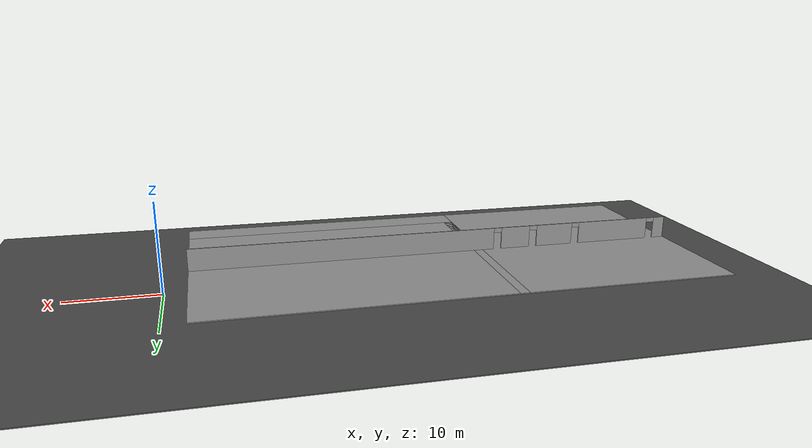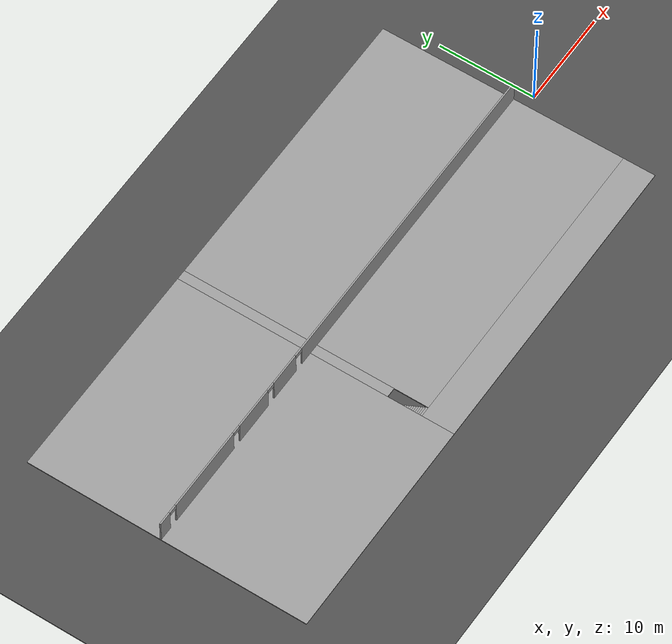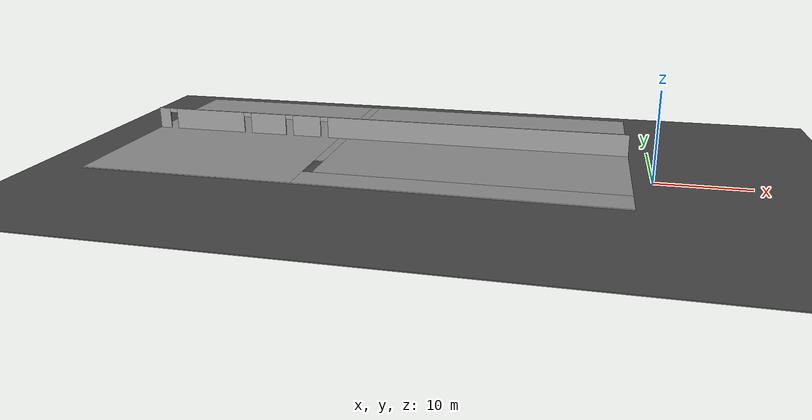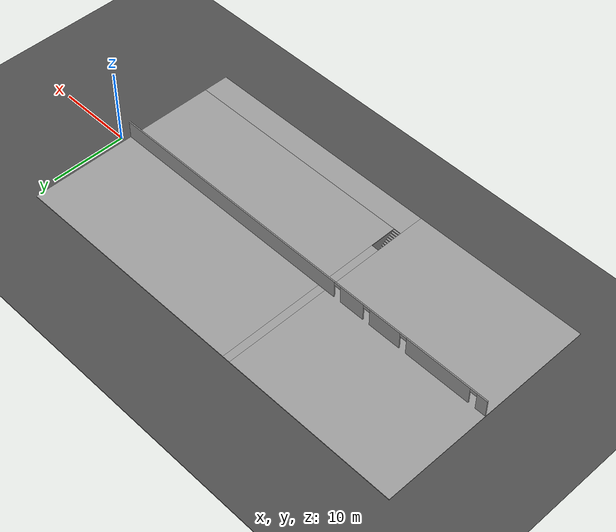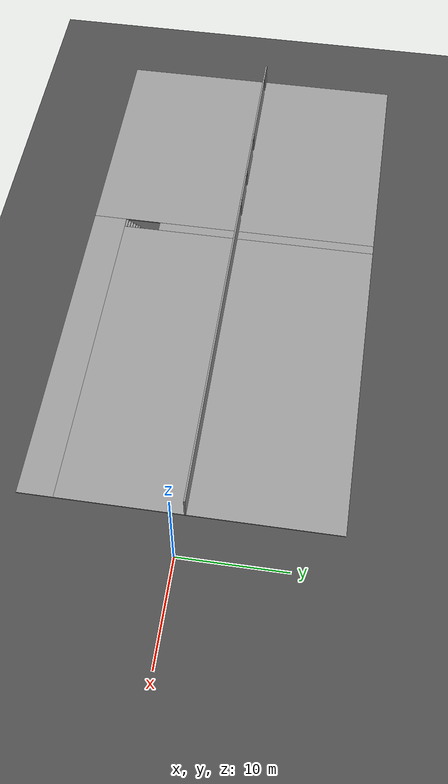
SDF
<sdf version="1.6">
 <world name="default">
  <model name="ground_plane">
   <static>1</static>
   <link name="link">
    <collision name="collision">
     <geometry><plane><normal>0 0 1</normal><size>100 100</size></plane></geometry>
     <surface>
      <contact><collide_bitmask>65535</collide_bitmask></contact>
      <friction><ode><mu>100</mu><mu2>50</mu2></ode></friction>
     </surface>
    </collision>
    <visual name="visual">
     <cast_shadows>0</cast_shadows>
     <geometry><plane><normal>0 0 1</normal><size>100 100</size></plane></geometry>
     <material>
      <script><uri>file://media/materials/scripts/gazebo.material</uri><name>Gazebo/Grey</name></script>
     </material>
    </visual>
   </link>
  </model>
  <model name="asphalt_plane">
   <static>1</static>
   <link name="link">
    <collision name="collision"><geometry><box><size>200 200 0.1</size></box></geometry></collision>
    <visual name="visual">
     <cast_shadows>0</cast_shadows>
     <geometry><box><size>200 200 0.1</size></box></geometry>
     <material>
      <script>
       <uri>model://asphalt_plane/materials/scripts</uri>
       <uri>model://asphalt_plane/materials/textures</uri>
       <name>vrc/asphalt</name>
      </script>
     </material>
    </visual>
   </link>
  </model>
  <model name="Biggest">
   <link name="Floor_3">
    <pose>0 0 2.5 0 -0 0</pose>
    <visual name="Floor_3_Visual_1">
     <pose>11.2183 -12.6292 0.05 0 -0 0</pose>
     <geometry><box><size>32.1063 3.27346 0.1</size></box></geometry>
     <material>
      <script><uri>file://media/materials/scripts/gazebo.material</uri><name>Gazebo/Grey</name></script>
      <ambient>1 1 1 1</ambient>
     </material>
     <meta><layer>1</layer></meta>
    </visual>
    <visual name="Floor_3_Visual_3">
     <pose>-4.33484 3.38673 0.05 0 -0 0</pose>
     <geometry><box><size>1 21.7585 0.1</size></box></geometry>
     <material>
      <script><uri>file://media/materials/scripts/gazebo.material</uri><name>Gazebo/Grey</name></script>
      <ambient>1 1 1 1</ambient>
     </material>
     <meta><layer>1</layer></meta>
    </visual>
    <visual name="Floor_3_Visual_0">
     <pose>-16.0531 0 0.05 0 -0 0</pose>
     <geometry><box><size>22.4366 28.5319 0.1</size></box></geometry>
     <material>
      <script><uri>file://media/materials/scripts/gazebo.material</uri><name>Gazebo/Grey</name></script>
      <ambient>1 1 1 1</ambient>
     </material>
     <meta><layer>1</layer></meta>
    </visual>
    <visual name="Floor_3_Visual_2">
     <pose>11.7183 1.63673 0.05 0 -0 0</pose>
     <geometry><box><size>31.1063 25.2585 0.1</size></box></geometry>
     <material>
      <script><uri>file://media/materials/scripts/gazebo.material</uri><name>Gazebo/Grey</name></script>
      <ambient>1 1 1 1</ambient>
     </material>
     <meta><layer>1</layer></meta>
    </visual>
    <collision name="Floor_3_Collision_2">
     <pose>11.7183 1.63673 0.05 0 -0 0</pose>
     <geometry><box><size>31.1063 25.2585 0.1</size></box></geometry>
     <surface>
      <friction>
       <ode><mu>1</mu><mu2>1</mu2><fdir1>0 0 0</fdir1><slip1>0</slip1><slip2>0</slip2></ode>
       <torsional>
        <coefficient>1</coefficient>
        <patch_radius>0</patch_radius>
        <surface_radius>0</surface_radius>
        <use_patch_radius>1</use_patch_radius>
        <ode><slip>0</slip></ode>
       </torsional>
      </friction>
      <bounce><restitution_coefficient>0</restitution_coefficient><threshold>1e+06</threshold></bounce>
      <contact>
       <collide_without_contact>0</collide_without_contact>
       <collide_without_contact_bitmask>1</collide_without_contact_bitmask>
       <collide_bitmask>1</collide_bitmask>
       <ode>
        <soft_cfm>0</soft_cfm>
        <soft_erp>0.2</soft_erp>
        <kp>1e+13</kp>
        <kd>1</kd>
        <max_vel>0.01</max_vel>
        <min_depth>0</min_depth>
       </ode>
       <bullet>
        <split_impulse>1</split_impulse>
        <split_impulse_penetration_threshold>-0.01</split_impulse_penetration_threshold>
        <soft_cfm>0</soft_cfm>
        <soft_erp>0.2</soft_erp>
        <kp>1e+13</kp>
        <kd>1</kd>
       </bullet>
      </contact>
     </surface>
    </collision>
    <collision name="Floor_3_Collision_1">
     <pose>11.2183 -12.6292 0.05 0 -0 0</pose>
     <geometry><box><size>32.1063 3.27346 0.1</size></box></geometry>
     <surface>
      <friction>
       <ode><mu>1</mu><mu2>1</mu2><fdir1>0 0 0</fdir1><slip1>0</slip1><slip2>0</slip2></ode>
       <torsional>
        <coefficient>1</coefficient>
        <patch_radius>0</patch_radius>
        <surface_radius>0</surface_radius>
        <use_patch_radius>1</use_patch_radius>
        <ode><slip>0</slip></ode>
       </torsional>
      </friction>
      <bounce><restitution_coefficient>0</restitution_coefficient><threshold>1e+06</threshold></bounce>
      <contact>
       <collide_without_contact>0</collide_without_contact>
       <collide_without_contact_bitmask>1</collide_without_contact_bitmask>
       <collide_bitmask>1</collide_bitmask>
       <ode>
        <soft_cfm>0</soft_cfm>
        <soft_erp>0.2</soft_erp>
        <kp>1e+13</kp>
        <kd>1</kd>
        <max_vel>0.01</max_vel>
        <min_depth>0</min_depth>
       </ode>
       <bullet>
        <split_impulse>1</split_impulse>
        <split_impulse_penetration_threshold>-0.01</split_impulse_penetration_threshold>
        <soft_cfm>0</soft_cfm>
        <soft_erp>0.2</soft_erp>
        <kp>1e+13</kp>
        <kd>1</kd>
       </bullet>
      </contact>
     </surface>
    </collision>
    <collision name="Floor_3_Collision_3">
     <pose>-4.33484 3.38673 0.05 0 -0 0</pose>
     <geometry><box><size>1 21.7585 0.1</size></box></geometry>
     <surface>
      <friction>
       <ode><mu>1</mu><mu2>1</mu2><fdir1>0 0 0</fdir1><slip1>0</slip1><slip2>0</slip2></ode>
       <torsional>
        <coefficient>1</coefficient>
        <patch_radius>0</patch_radius>
        <surface_radius>0</surface_radius>
        <use_patch_radius>1</use_patch_radius>
        <ode><slip>0</slip></ode>
       </torsional>
      </friction>
      <bounce><restitution_coefficient>0</restitution_coefficient><threshold>1e+06</threshold></bounce>
      <contact>
       <collide_without_contact>0</collide_without_contact>
       <collide_without_contact_bitmask>1</collide_without_contact_bitmask>
       <collide_bitmask>1</collide_bitmask>
       <ode>
        <soft_cfm>0</soft_cfm>
        <soft_erp>0.2</soft_erp>
        <kp>1e+13</kp>
        <kd>1</kd>
        <max_vel>0.01</max_vel>
        <min_depth>0</min_depth>
       </ode>
       <bullet>
        <split_impulse>1</split_impulse>
        <split_impulse_penetration_threshold>-0.01</split_impulse_penetration_threshold>
        <soft_cfm>0</soft_cfm>
        <soft_erp>0.2</soft_erp>
        <kp>1e+13</kp>
        <kd>1</kd>
       </bullet>
      </contact>
     </surface>
    </collision>
    <collision name="Floor_3_Collision_0">
     <pose>-16.0531 0 0.05 0 -0 0</pose>
     <geometry><box><size>22.4366 28.5319 0.1</size></box></geometry>
     <surface>
      <friction>
       <ode><mu>1</mu><mu2>1</mu2><fdir1>0 0 0</fdir1><slip1>0</slip1><slip2>0</slip2></ode>
       <torsional>
        <coefficient>1</coefficient>
        <patch_radius>0</patch_radius>
        <surface_radius>0</surface_radius>
        <use_patch_radius>1</use_patch_radius>
        <ode><slip>0</slip></ode>
       </torsional>
      </friction>
      <bounce><restitution_coefficient>0</restitution_coefficient><threshold>1e+06</threshold></bounce>
      <contact>
       <collide_without_contact>0</collide_without_contact>
       <collide_without_contact_bitmask>1</collide_without_contact_bitmask>
       <collide_bitmask>1</collide_bitmask>
       <ode>
        <soft_cfm>0</soft_cfm>
        <soft_erp>0.2</soft_erp>
        <kp>1e+13</kp>
        <kd>1</kd>
        <max_vel>0.01</max_vel>
        <min_depth>0</min_depth>
       </ode>
       <bullet>
        <split_impulse>1</split_impulse>
        <split_impulse_penetration_threshold>-0.01</split_impulse_penetration_threshold>
        <soft_cfm>0</soft_cfm>
        <soft_erp>0.2</soft_erp>
        <kp>1e+13</kp>
        <kd>1</kd>
       </bullet>
      </contact>
     </surface>
    </collision>
   </link>
   <link name="Stairs_1">
    <visual name="Stairs_1_Visual_6">
     <pose>-4.33484 -9.00918 1.08333 0 -0 0</pose>
     <geometry><box><size>1 0.233333 0.166667</size></box></geometry>
     <material>
      <script><uri>file://media/materials/scripts/gazebo.material</uri><name>Gazebo/Grey</name></script>
      <ambient>1 1 1 1</ambient>
     </material>
     <meta><layer>0</layer></meta>
    </visual>
    <visual name="Stairs_1_Visual_2">
     <pose>-4.33484 -8.07584 0.416667 0 -0 0</pose>
     <geometry><box><size>1 0.233333 0.166667</size></box></geometry>
     <material>
      <script><uri>file://media/materials/scripts/gazebo.material</uri><name>Gazebo/Grey</name></script>
      <ambient>1 1 1 1</ambient>
     </material>
     <meta><layer>0</layer></meta>
    </visual>
    <visual name="Stairs_1_Visual_4">
     <pose>-4.33484 -8.54251 0.75 0 -0 0</pose>
     <geometry><box><size>1 0.233333 0.166667</size></box></geometry>
     <material>
      <script><uri>file://media/materials/scripts/gazebo.material</uri><name>Gazebo/Grey</name></script>
      <ambient>1 1 1 1</ambient>
     </material>
     <meta><layer>0</layer></meta>
    </visual>
    <visual name="Stairs_1_Visual_1">
     <pose>-4.33484 -7.84251 0.25 0 -0 0</pose>
     <geometry><box><size>1 0.233333 0.166667</size></box></geometry>
     <material>
      <script><uri>file://media/materials/scripts/gazebo.material</uri><name>Gazebo/Grey</name></script>
      <ambient>1 1 1 1</ambient>
     </material>
     <meta><layer>0</layer></meta>
    </visual>
    <visual name="Stairs_1_Visual_13">
     <pose>-4.33484 -10.6425 2.25 0 -0 0</pose>
     <geometry><box><size>1 0.233333 0.166667</size></box></geometry>
     <material>
      <script><uri>file://media/materials/scripts/gazebo.material</uri><name>Gazebo/Grey</name></script>
      <ambient>1 1 1 1</ambient>
     </material>
     <meta><layer>0</layer></meta>
    </visual>
    <visual name="Stairs_1_Visual_0">
     <pose>-4.33484 -7.60918 0.083333 0 -0 0</pose>
     <geometry><box><size>1 0.233333 0.166667</size></box></geometry>
     <material>
      <script><uri>file://media/materials/scripts/gazebo.material</uri><name>Gazebo/Grey</name></script>
      <ambient>1 1 1 1</ambient>
     </material>
     <meta><layer>0</layer></meta>
    </visual>
    <visual name="Stairs_1_Visual_9">
     <pose>-4.33484 -9.70918 1.58333 0 -0 0</pose>
     <geometry><box><size>1 0.233333 0.166667</size></box></geometry>
     <material>
      <script><uri>file://media/materials/scripts/gazebo.material</uri><name>Gazebo/Grey</name></script>
      <ambient>1 1 1 1</ambient>
     </material>
     <meta><layer>0</layer></meta>
    </visual>
    <visual name="Stairs_1_Visual_14">
     <pose>-4.33484 -10.8758 2.41667 0 -0 0</pose>
     <geometry><box><size>1 0.233333 0.166667</size></box></geometry>
     <material>
      <script><uri>file://media/materials/scripts/gazebo.material</uri><name>Gazebo/Grey</name></script>
      <ambient>1 1 1 1</ambient>
     </material>
     <meta><layer>0</layer></meta>
    </visual>
    <visual name="Stairs_1_Visual_3">
     <pose>-4.33484 -8.30917 0.583333 0 -0 0</pose>
     <geometry><box><size>1 0.233333 0.166667</size></box></geometry>
     <material>
      <script><uri>file://media/materials/scripts/gazebo.material</uri><name>Gazebo/Grey</name></script>
      <ambient>1 1 1 1</ambient>
     </material>
     <meta><layer>0</layer></meta>
    </visual>
    <visual name="Stairs_1_Visual_5">
     <pose>-4.33484 -8.77584 0.916667 0 -0 0</pose>
     <geometry><box><size>1 0.233333 0.166667</size></box></geometry>
     <material>
      <script><uri>file://media/materials/scripts/gazebo.material</uri><name>Gazebo/Grey</name></script>
      <ambient>1 1 1 1</ambient>
     </material>
     <meta><layer>0</layer></meta>
    </visual>
    <visual name="Stairs_1_Visual_10">
     <pose>-4.33484 -9.94251 1.75 0 -0 0</pose>
     <geometry><box><size>1 0.233333 0.166667</size></box></geometry>
     <material>
      <script><uri>file://media/materials/scripts/gazebo.material</uri><name>Gazebo/Grey</name></script>
      <ambient>1 1 1 1</ambient>
     </material>
     <meta><layer>0</layer></meta>
    </visual>
    <visual name="Stairs_1_Visual_8">
     <pose>-4.33484 -9.47584 1.41667 0 -0 0</pose>
     <geometry><box><size>1 0.233333 0.166667</size></box></geometry>
     <material>
      <script><uri>file://media/materials/scripts/gazebo.material</uri><name>Gazebo/Grey</name></script>
      <ambient>1 1 1 1</ambient>
     </material>
     <meta><layer>0</layer></meta>
    </visual>
    <visual name="Stairs_1_Visual_11">
     <pose>-4.33484 -10.1758 1.91667 0 -0 0</pose>
     <geometry><box><size>1 0.233333 0.166667</size></box></geometry>
     <material>
      <script><uri>file://media/materials/scripts/gazebo.material</uri><name>Gazebo/Grey</name></script>
      <ambient>1 1 1 1</ambient>
     </material>
     <meta><layer>0</layer></meta>
    </visual>
    <visual name="Stairs_1_Visual_7">
     <pose>-4.33484 -9.24251 1.25 0 -0 0</pose>
     <geometry><box><size>1 0.233333 0.166667</size></box></geometry>
     <material>
      <script><uri>file://media/materials/scripts/gazebo.material</uri><name>Gazebo/Grey</name></script>
      <ambient>1 1 1 1</ambient>
     </material>
     <meta><layer>0</layer></meta>
    </visual>
    <visual name="Stairs_1_Visual_12">
     <pose>-4.33484 -10.4092 2.08333 0 -0 0</pose>
     <geometry><box><size>1 0.233333 0.166667</size></box></geometry>
     <material>
      <script><uri>file://media/materials/scripts/gazebo.material</uri><name>Gazebo/Grey</name></script>
      <ambient>1 1 1 1</ambient>
     </material>
     <meta><layer>0</layer></meta>
    </visual>
    <collision name="Stairs_1_Collision_6">
     <pose>-4.33484 -9.00918 1.08333 0 -0 0</pose>
     <geometry><box><size>1 0.233333 0.166667</size></box></geometry>
     <surface>
      <friction>
       <ode><mu>1</mu><mu2>1</mu2><fdir1>0 0 0</fdir1><slip1>0</slip1><slip2>0</slip2></ode>
       <torsional>
        <coefficient>1</coefficient>
        <patch_radius>0</patch_radius>
        <surface_radius>0</surface_radius>
        <use_patch_radius>1</use_patch_radius>
        <ode><slip>0</slip></ode>
       </torsional>
      </friction>
      <bounce><restitution_coefficient>0</restitution_coefficient><threshold>1e+06</threshold></bounce>
      <contact>
       <collide_without_contact>0</collide_without_contact>
       <collide_without_contact_bitmask>1</collide_without_contact_bitmask>
       <collide_bitmask>1</collide_bitmask>
       <ode>
        <soft_cfm>0</soft_cfm>
        <soft_erp>0.2</soft_erp>
        <kp>1e+13</kp>
        <kd>1</kd>
        <max_vel>0.01</max_vel>
        <min_depth>0</min_depth>
       </ode>
       <bullet>
        <split_impulse>1</split_impulse>
        <split_impulse_penetration_threshold>-0.01</split_impulse_penetration_threshold>
        <soft_cfm>0</soft_cfm>
        <soft_erp>0.2</soft_erp>
        <kp>1e+13</kp>
        <kd>1</kd>
       </bullet>
      </contact>
     </surface>
    </collision>
    <collision name="Stairs_1_Collision_5">
     <pose>-4.33484 -8.77584 0.916667 0 -0 0</pose>
     <geometry><box><size>1 0.233333 0.166667</size></box></geometry>
     <surface>
      <friction>
       <ode><mu>1</mu><mu2>1</mu2><fdir1>0 0 0</fdir1><slip1>0</slip1><slip2>0</slip2></ode>
       <torsional>
        <coefficient>1</coefficient>
        <patch_radius>0</patch_radius>
        <surface_radius>0</surface_radius>
        <use_patch_radius>1</use_patch_radius>
        <ode><slip>0</slip></ode>
       </torsional>
      </friction>
      <bounce><restitution_coefficient>0</restitution_coefficient><threshold>1e+06</threshold></bounce>
      <contact>
       <collide_without_contact>0</collide_without_contact>
       <collide_without_contact_bitmask>1</collide_without_contact_bitmask>
       <collide_bitmask>1</collide_bitmask>
       <ode>
        <soft_cfm>0</soft_cfm>
        <soft_erp>0.2</soft_erp>
        <kp>1e+13</kp>
        <kd>1</kd>
        <max_vel>0.01</max_vel>
        <min_depth>0</min_depth>
       </ode>
       <bullet>
        <split_impulse>1</split_impulse>
        <split_impulse_penetration_threshold>-0.01</split_impulse_penetration_threshold>
        <soft_cfm>0</soft_cfm>
        <soft_erp>0.2</soft_erp>
        <kp>1e+13</kp>
        <kd>1</kd>
       </bullet>
      </contact>
     </surface>
    </collision>
    <collision name="Stairs_1_Collision_1">
     <pose>-4.33484 -7.84251 0.25 0 -0 0</pose>
     <geometry><box><size>1 0.233333 0.166667</size></box></geometry>
     <surface>
      <friction>
       <ode><mu>1</mu><mu2>1</mu2><fdir1>0 0 0</fdir1><slip1>0</slip1><slip2>0</slip2></ode>
       <torsional>
        <coefficient>1</coefficient>
        <patch_radius>0</patch_radius>
        <surface_radius>0</surface_radius>
        <use_patch_radius>1</use_patch_radius>
        <ode><slip>0</slip></ode>
       </torsional>
      </friction>
      <bounce><restitution_coefficient>0</restitution_coefficient><threshold>1e+06</threshold></bounce>
      <contact>
       <collide_without_contact>0</collide_without_contact>
       <collide_without_contact_bitmask>1</collide_without_contact_bitmask>
       <collide_bitmask>1</collide_bitmask>
       <ode>
        <soft_cfm>0</soft_cfm>
        <soft_erp>0.2</soft_erp>
        <kp>1e+13</kp>
        <kd>1</kd>
        <max_vel>0.01</max_vel>
        <min_depth>0</min_depth>
       </ode>
       <bullet>
        <split_impulse>1</split_impulse>
        <split_impulse_penetration_threshold>-0.01</split_impulse_penetration_threshold>
        <soft_cfm>0</soft_cfm>
        <soft_erp>0.2</soft_erp>
        <kp>1e+13</kp>
        <kd>1</kd>
       </bullet>
      </contact>
     </surface>
    </collision>
    <collision name="Stairs_1_Collision_9">
     <pose>-4.33484 -9.70918 1.58333 0 -0 0</pose>
     <geometry><box><size>1 0.233333 0.166667</size></box></geometry>
     <surface>
      <friction>
       <ode><mu>1</mu><mu2>1</mu2><fdir1>0 0 0</fdir1><slip1>0</slip1><slip2>0</slip2></ode>
       <torsional>
        <coefficient>1</coefficient>
        <patch_radius>0</patch_radius>
        <surface_radius>0</surface_radius>
        <use_patch_radius>1</use_patch_radius>
        <ode><slip>0</slip></ode>
       </torsional>
      </friction>
      <bounce><restitution_coefficient>0</restitution_coefficient><threshold>1e+06</threshold></bounce>
      <contact>
       <collide_without_contact>0</collide_without_contact>
       <collide_without_contact_bitmask>1</collide_without_contact_bitmask>
       <collide_bitmask>1</collide_bitmask>
       <ode>
        <soft_cfm>0</soft_cfm>
        <soft_erp>0.2</soft_erp>
        <kp>1e+13</kp>
        <kd>1</kd>
        <max_vel>0.01</max_vel>
        <min_depth>0</min_depth>
       </ode>
       <bullet>
        <split_impulse>1</split_impulse>
        <split_impulse_penetration_threshold>-0.01</split_impulse_penetration_threshold>
        <soft_cfm>0</soft_cfm>
        <soft_erp>0.2</soft_erp>
        <kp>1e+13</kp>
        <kd>1</kd>
       </bullet>
      </contact>
     </surface>
    </collision>
    <collision name="Stairs_1_Collision_12">
     <pose>-4.33484 -10.4092 2.08333 0 -0 0</pose>
     <geometry><box><size>1 0.233333 0.166667</size></box></geometry>
     <surface>
      <friction>
       <ode><mu>1</mu><mu2>1</mu2><fdir1>0 0 0</fdir1><slip1>0</slip1><slip2>0</slip2></ode>
       <torsional>
        <coefficient>1</coefficient>
        <patch_radius>0</patch_radius>
        <surface_radius>0</surface_radius>
        <use_patch_radius>1</use_patch_radius>
        <ode><slip>0</slip></ode>
       </torsional>
      </friction>
      <bounce><restitution_coefficient>0</restitution_coefficient><threshold>1e+06</threshold></bounce>
      <contact>
       <collide_without_contact>0</collide_without_contact>
       <collide_without_contact_bitmask>1</collide_without_contact_bitmask>
       <collide_bitmask>1</collide_bitmask>
       <ode>
        <soft_cfm>0</soft_cfm>
        <soft_erp>0.2</soft_erp>
        <kp>1e+13</kp>
        <kd>1</kd>
        <max_vel>0.01</max_vel>
        <min_depth>0</min_depth>
       </ode>
       <bullet>
        <split_impulse>1</split_impulse>
        <split_impulse_penetration_threshold>-0.01</split_impulse_penetration_threshold>
        <soft_cfm>0</soft_cfm>
        <soft_erp>0.2</soft_erp>
        <kp>1e+13</kp>
        <kd>1</kd>
       </bullet>
      </contact>
     </surface>
    </collision>
    <collision name="Stairs_1_Collision_2">
     <pose>-4.33484 -8.07584 0.416667 0 -0 0</pose>
     <geometry><box><size>1 0.233333 0.166667</size></box></geometry>
     <surface>
      <friction>
       <ode><mu>1</mu><mu2>1</mu2><fdir1>0 0 0</fdir1><slip1>0</slip1><slip2>0</slip2></ode>
       <torsional>
        <coefficient>1</coefficient>
        <patch_radius>0</patch_radius>
        <surface_radius>0</surface_radius>
        <use_patch_radius>1</use_patch_radius>
        <ode><slip>0</slip></ode>
       </torsional>
      </friction>
      <bounce><restitution_coefficient>0</restitution_coefficient><threshold>1e+06</threshold></bounce>
      <contact>
       <collide_without_contact>0</collide_without_contact>
       <collide_without_contact_bitmask>1</collide_without_contact_bitmask>
       <collide_bitmask>1</collide_bitmask>
       <ode>
        <soft_cfm>0</soft_cfm>
        <soft_erp>0.2</soft_erp>
        <kp>1e+13</kp>
        <kd>1</kd>
        <max_vel>0.01</max_vel>
        <min_depth>0</min_depth>
       </ode>
       <bullet>
        <split_impulse>1</split_impulse>
        <split_impulse_penetration_threshold>-0.01</split_impulse_penetration_threshold>
        <soft_cfm>0</soft_cfm>
        <soft_erp>0.2</soft_erp>
        <kp>1e+13</kp>
        <kd>1</kd>
       </bullet>
      </contact>
     </surface>
    </collision>
    <collision name="Stairs_1_Collision_10">
     <pose>-4.33484 -9.94251 1.75 0 -0 0</pose>
     <geometry><box><size>1 0.233333 0.166667</size></box></geometry>
     <surface>
      <friction>
       <ode><mu>1</mu><mu2>1</mu2><fdir1>0 0 0</fdir1><slip1>0</slip1><slip2>0</slip2></ode>
       <torsional>
        <coefficient>1</coefficient>
        <patch_radius>0</patch_radius>
        <surface_radius>0</surface_radius>
        <use_patch_radius>1</use_patch_radius>
        <ode><slip>0</slip></ode>
       </torsional>
      </friction>
      <bounce><restitution_coefficient>0</restitution_coefficient><threshold>1e+06</threshold></bounce>
      <contact>
       <collide_without_contact>0</collide_without_contact>
       <collide_without_contact_bitmask>1</collide_without_contact_bitmask>
       <collide_bitmask>1</collide_bitmask>
       <ode>
        <soft_cfm>0</soft_cfm>
        <soft_erp>0.2</soft_erp>
        <kp>1e+13</kp>
        <kd>1</kd>
        <max_vel>0.01</max_vel>
        <min_depth>0</min_depth>
       </ode>
       <bullet>
        <split_impulse>1</split_impulse>
        <split_impulse_penetration_threshold>-0.01</split_impulse_penetration_threshold>
        <soft_cfm>0</soft_cfm>
        <soft_erp>0.2</soft_erp>
        <kp>1e+13</kp>
        <kd>1</kd>
       </bullet>
      </contact>
     </surface>
    </collision>
    <collision name="Stairs_1_Collision_3">
     <pose>-4.33484 -8.30917 0.583333 0 -0 0</pose>
     <geometry><box><size>1 0.233333 0.166667</size></box></geometry>
     <surface>
      <friction>
       <ode><mu>1</mu><mu2>1</mu2><fdir1>0 0 0</fdir1><slip1>0</slip1><slip2>0</slip2></ode>
       <torsional>
        <coefficient>1</coefficient>
        <patch_radius>0</patch_radius>
        <surface_radius>0</surface_radius>
        <use_patch_radius>1</use_patch_radius>
        <ode><slip>0</slip></ode>
       </torsional>
      </friction>
      <bounce><restitution_coefficient>0</restitution_coefficient><threshold>1e+06</threshold></bounce>
      <contact>
       <collide_without_contact>0</collide_without_contact>
       <collide_without_contact_bitmask>1</collide_without_contact_bitmask>
       <collide_bitmask>1</collide_bitmask>
       <ode>
        <soft_cfm>0</soft_cfm>
        <soft_erp>0.2</soft_erp>
        <kp>1e+13</kp>
        <kd>1</kd>
        <max_vel>0.01</max_vel>
        <min_depth>0</min_depth>
       </ode>
       <bullet>
        <split_impulse>1</split_impulse>
        <split_impulse_penetration_threshold>-0.01</split_impulse_penetration_threshold>
        <soft_cfm>0</soft_cfm>
        <soft_erp>0.2</soft_erp>
        <kp>1e+13</kp>
        <kd>1</kd>
       </bullet>
      </contact>
     </surface>
    </collision>
    <collision name="Stairs_1_Collision_7">
     <pose>-4.33484 -9.24251 1.25 0 -0 0</pose>
     <geometry><box><size>1 0.233333 0.166667</size></box></geometry>
     <surface>
      <friction>
       <ode><mu>1</mu><mu2>1</mu2><fdir1>0 0 0</fdir1><slip1>0</slip1><slip2>0</slip2></ode>
       <torsional>
        <coefficient>1</coefficient>
        <patch_radius>0</patch_radius>
        <surface_radius>0</surface_radius>
        <use_patch_radius>1</use_patch_radius>
        <ode><slip>0</slip></ode>
       </torsional>
      </friction>
      <bounce><restitution_coefficient>0</restitution_coefficient><threshold>1e+06</threshold></bounce>
      <contact>
       <collide_without_contact>0</collide_without_contact>
       <collide_without_contact_bitmask>1</collide_without_contact_bitmask>
       <collide_bitmask>1</collide_bitmask>
       <ode>
        <soft_cfm>0</soft_cfm>
        <soft_erp>0.2</soft_erp>
        <kp>1e+13</kp>
        <kd>1</kd>
        <max_vel>0.01</max_vel>
        <min_depth>0</min_depth>
       </ode>
       <bullet>
        <split_impulse>1</split_impulse>
        <split_impulse_penetration_threshold>-0.01</split_impulse_penetration_threshold>
        <soft_cfm>0</soft_cfm>
        <soft_erp>0.2</soft_erp>
        <kp>1e+13</kp>
        <kd>1</kd>
       </bullet>
      </contact>
     </surface>
    </collision>
    <collision name="Stairs_1_Collision_0">
     <pose>-4.33484 -7.60918 0.083333 0 -0 0</pose>
     <geometry><box><size>1 0.233333 0.166667</size></box></geometry>
     <surface>
      <friction>
       <ode><mu>1</mu><mu2>1</mu2><fdir1>0 0 0</fdir1><slip1>0</slip1><slip2>0</slip2></ode>
       <torsional>
        <coefficient>1</coefficient>
        <patch_radius>0</patch_radius>
        <surface_radius>0</surface_radius>
        <use_patch_radius>1</use_patch_radius>
        <ode><slip>0</slip></ode>
       </torsional>
      </friction>
      <bounce><restitution_coefficient>0</restitution_coefficient><threshold>1e+06</threshold></bounce>
      <contact>
       <collide_without_contact>0</collide_without_contact>
       <collide_without_contact_bitmask>1</collide_without_contact_bitmask>
       <collide_bitmask>1</collide_bitmask>
       <ode>
        <soft_cfm>0</soft_cfm>
        <soft_erp>0.2</soft_erp>
        <kp>1e+13</kp>
        <kd>1</kd>
        <max_vel>0.01</max_vel>
        <min_depth>0</min_depth>
       </ode>
       <bullet>
        <split_impulse>1</split_impulse>
        <split_impulse_penetration_threshold>-0.01</split_impulse_penetration_threshold>
        <soft_cfm>0</soft_cfm>
        <soft_erp>0.2</soft_erp>
        <kp>1e+13</kp>
        <kd>1</kd>
       </bullet>
      </contact>
     </surface>
    </collision>
    <collision name="Stairs_1_Collision_14">
     <pose>-4.33484 -10.8758 2.41667 0 -0 0</pose>
     <geometry><box><size>1 0.233333 0.166667</size></box></geometry>
     <surface>
      <friction>
       <ode><mu>1</mu><mu2>1</mu2><fdir1>0 0 0</fdir1><slip1>0</slip1><slip2>0</slip2></ode>
       <torsional>
        <coefficient>1</coefficient>
        <patch_radius>0</patch_radius>
        <surface_radius>0</surface_radius>
        <use_patch_radius>1</use_patch_radius>
        <ode><slip>0</slip></ode>
       </torsional>
      </friction>
      <bounce><restitution_coefficient>0</restitution_coefficient><threshold>1e+06</threshold></bounce>
      <contact>
       <collide_without_contact>0</collide_without_contact>
       <collide_without_contact_bitmask>1</collide_without_contact_bitmask>
       <collide_bitmask>1</collide_bitmask>
       <ode>
        <soft_cfm>0</soft_cfm>
        <soft_erp>0.2</soft_erp>
        <kp>1e+13</kp>
        <kd>1</kd>
        <max_vel>0.01</max_vel>
        <min_depth>0</min_depth>
       </ode>
       <bullet>
        <split_impulse>1</split_impulse>
        <split_impulse_penetration_threshold>-0.01</split_impulse_penetration_threshold>
        <soft_cfm>0</soft_cfm>
        <soft_erp>0.2</soft_erp>
        <kp>1e+13</kp>
        <kd>1</kd>
       </bullet>
      </contact>
     </surface>
    </collision>
    <collision name="Stairs_1_Collision_8">
     <pose>-4.33484 -9.47584 1.41667 0 -0 0</pose>
     <geometry><box><size>1 0.233333 0.166667</size></box></geometry>
     <surface>
      <friction>
       <ode><mu>1</mu><mu2>1</mu2><fdir1>0 0 0</fdir1><slip1>0</slip1><slip2>0</slip2></ode>
       <torsional>
        <coefficient>1</coefficient>
        <patch_radius>0</patch_radius>
        <surface_radius>0</surface_radius>
        <use_patch_radius>1</use_patch_radius>
        <ode><slip>0</slip></ode>
       </torsional>
      </friction>
      <bounce><restitution_coefficient>0</restitution_coefficient><threshold>1e+06</threshold></bounce>
      <contact>
       <collide_without_contact>0</collide_without_contact>
       <collide_without_contact_bitmask>1</collide_without_contact_bitmask>
       <collide_bitmask>1</collide_bitmask>
       <ode>
        <soft_cfm>0</soft_cfm>
        <soft_erp>0.2</soft_erp>
        <kp>1e+13</kp>
        <kd>1</kd>
        <max_vel>0.01</max_vel>
        <min_depth>0</min_depth>
       </ode>
       <bullet>
        <split_impulse>1</split_impulse>
        <split_impulse_penetration_threshold>-0.01</split_impulse_penetration_threshold>
        <soft_cfm>0</soft_cfm>
        <soft_erp>0.2</soft_erp>
        <kp>1e+13</kp>
        <kd>1</kd>
       </bullet>
      </contact>
     </surface>
    </collision>
    <collision name="Stairs_1_Collision_13">
     <pose>-4.33484 -10.6425 2.25 0 -0 0</pose>
     <geometry><box><size>1 0.233333 0.166667</size></box></geometry>
     <surface>
      <friction>
       <ode><mu>1</mu><mu2>1</mu2><fdir1>0 0 0</fdir1><slip1>0</slip1><slip2>0</slip2></ode>
       <torsional>
        <coefficient>1</coefficient>
        <patch_radius>0</patch_radius>
        <surface_radius>0</surface_radius>
        <use_patch_radius>1</use_patch_radius>
        <ode><slip>0</slip></ode>
       </torsional>
      </friction>
      <bounce><restitution_coefficient>0</restitution_coefficient><threshold>1e+06</threshold></bounce>
      <contact>
       <collide_without_contact>0</collide_without_contact>
       <collide_without_contact_bitmask>1</collide_without_contact_bitmask>
       <collide_bitmask>1</collide_bitmask>
       <ode>
        <soft_cfm>0</soft_cfm>
        <soft_erp>0.2</soft_erp>
        <kp>1e+13</kp>
        <kd>1</kd>
        <max_vel>0.01</max_vel>
        <min_depth>0</min_depth>
       </ode>
       <bullet>
        <split_impulse>1</split_impulse>
        <split_impulse_penetration_threshold>-0.01</split_impulse_penetration_threshold>
        <soft_cfm>0</soft_cfm>
        <soft_erp>0.2</soft_erp>
        <kp>1e+13</kp>
        <kd>1</kd>
       </bullet>
      </contact>
     </surface>
    </collision>
    <collision name="Stairs_1_Collision_11">
     <pose>-4.33484 -10.1758 1.91667 0 -0 0</pose>
     <geometry><box><size>1 0.233333 0.166667</size></box></geometry>
     <surface>
      <friction>
       <ode><mu>1</mu><mu2>1</mu2><fdir1>0 0 0</fdir1><slip1>0</slip1><slip2>0</slip2></ode>
       <torsional>
        <coefficient>1</coefficient>
        <patch_radius>0</patch_radius>
        <surface_radius>0</surface_radius>
        <use_patch_radius>1</use_patch_radius>
        <ode><slip>0</slip></ode>
       </torsional>
      </friction>
      <bounce><restitution_coefficient>0</restitution_coefficient><threshold>1e+06</threshold></bounce>
      <contact>
       <collide_without_contact>0</collide_without_contact>
       <collide_without_contact_bitmask>1</collide_without_contact_bitmask>
       <collide_bitmask>1</collide_bitmask>
       <ode>
        <soft_cfm>0</soft_cfm>
        <soft_erp>0.2</soft_erp>
        <kp>1e+13</kp>
        <kd>1</kd>
        <max_vel>0.01</max_vel>
        <min_depth>0</min_depth>
       </ode>
       <bullet>
        <split_impulse>1</split_impulse>
        <split_impulse_penetration_threshold>-0.01</split_impulse_penetration_threshold>
        <soft_cfm>0</soft_cfm>
        <soft_erp>0.2</soft_erp>
        <kp>1e+13</kp>
        <kd>1</kd>
       </bullet>
      </contact>
     </surface>
    </collision>
    <collision name="Stairs_1_Collision_4">
     <pose>-4.33484 -8.54251 0.75 0 -0 0</pose>
     <geometry><box><size>1 0.233333 0.166667</size></box></geometry>
     <surface>
      <friction>
       <ode><mu>1</mu><mu2>1</mu2><fdir1>0 0 0</fdir1><slip1>0</slip1><slip2>0</slip2></ode>
       <torsional>
        <coefficient>1</coefficient>
        <patch_radius>0</patch_radius>
        <surface_radius>0</surface_radius>
        <use_patch_radius>1</use_patch_radius>
        <ode><slip>0</slip></ode>
       </torsional>
      </friction>
      <bounce><restitution_coefficient>0</restitution_coefficient><threshold>1e+06</threshold></bounce>
      <contact>
       <collide_without_contact>0</collide_without_contact>
       <collide_without_contact_bitmask>1</collide_without_contact_bitmask>
       <collide_bitmask>1</collide_bitmask>
       <ode>
        <soft_cfm>0</soft_cfm>
        <soft_erp>0.2</soft_erp>
        <kp>1e+13</kp>
        <kd>1</kd>
        <max_vel>0.01</max_vel>
        <min_depth>0</min_depth>
       </ode>
       <bullet>
        <split_impulse>1</split_impulse>
        <split_impulse_penetration_threshold>-0.01</split_impulse_penetration_threshold>
        <soft_cfm>0</soft_cfm>
        <soft_erp>0.2</soft_erp>
        <kp>1e+13</kp>
        <kd>1</kd>
       </bullet>
      </contact>
     </surface>
    </collision>
   </link>
   <link name="Wall_123">
    <pose>0.021436 0.51725 2.5 0 -0 0</pose>
    <visual name="Wall_123_Visual_0">
     <pose>-26.5759 0 1.25 0 -0 0</pose>
     <geometry><box><size>1.34821 0.15 2.5</size></box></geometry>
     <material>
      <script><uri>file://media/materials/scripts/gazebo.material</uri><name>Gazebo/Grey</name></script>
      <ambient>1 1 1 1</ambient>
     </material>
     <meta><layer>1</layer></meta>
    </visual>
    <visual name="Wall_123_Visual_1">
     <pose>-20.7224 0 1.25 0 -0 0</pose>
     <geometry><box><size>8.55875 0.15 2.5</size></box></geometry>
     <material>
      <script><uri>file://media/materials/scripts/gazebo.material</uri><name>Gazebo/Grey</name></script>
      <ambient>1 1 1 1</ambient>
     </material>
     <meta><layer>1</layer></meta>
    </visual>
    <visual name="Wall_123_Visual_2">
     <pose>-13.4105 0 1.25 0 -0 0</pose>
     <geometry><box><size>4.26498 0.15 2.5</size></box></geometry>
     <material>
      <script><uri>file://media/materials/scripts/gazebo.material</uri><name>Gazebo/Grey</name></script>
      <ambient>1 1 1 1</ambient>
     </material>
     <meta><layer>1</layer></meta>
    </visual>
    <visual name="Wall_123_Visual_3">
     <pose>-8.71228 0 1.25 0 -0 0</pose>
     <geometry><box><size>3.33155 0.15 2.5</size></box></geometry>
     <material>
      <script><uri>file://media/materials/scripts/gazebo.material</uri><name>Gazebo/Grey</name></script>
      <ambient>1 1 1 1</ambient>
     </material>
     <meta><layer>1</layer></meta>
    </visual>
    <visual name="Wall_123_Visual_4">
     <pose>10.5517 0 1.25 0 -0 0</pose>
     <geometry><box><size>33.3965 0.15 2.5</size></box></geometry>
     <material>
      <script><uri>file://media/materials/scripts/gazebo.material</uri><name>Gazebo/Grey</name></script>
      <ambient>1 1 1 1</ambient>
     </material>
     <meta><layer>1</layer></meta>
    </visual>
    <visual name="Wall_123_Visual_5">
     <pose>-25.4518 0 2.25 0 -0 0</pose>
     <geometry><box><size>0.9 0.15 0.5</size></box></geometry>
     <material>
      <script><uri>file://media/materials/scripts/gazebo.material</uri><name>Gazebo/Grey</name></script>
      <ambient>1 1 1 1</ambient>
     </material>
     <meta><layer>1</layer></meta>
    </visual>
    <visual name="Wall_123_Visual_6">
     <pose>-15.993 0 2.25 0 -0 0</pose>
     <geometry><box><size>0.9 0.15 0.5</size></box></geometry>
     <material>
      <script><uri>file://media/materials/scripts/gazebo.material</uri><name>Gazebo/Grey</name></script>
      <ambient>1 1 1 1</ambient>
     </material>
     <meta><layer>1</layer></meta>
    </visual>
    <visual name="Wall_123_Visual_7">
     <pose>-10.8281 0 2.25 0 -0 0</pose>
     <geometry><box><size>0.9 0.15 0.5</size></box></geometry>
     <material>
      <script><uri>file://media/materials/scripts/gazebo.material</uri><name>Gazebo/Grey</name></script>
      <ambient>1 1 1 1</ambient>
     </material>
     <meta><layer>1</layer></meta>
    </visual>
    <visual name="Wall_123_Visual_8">
     <pose>-6.59651 0 2.25 0 -0 0</pose>
     <geometry><box><size>0.9 0.15 0.5</size></box></geometry>
     <material>
      <script><uri>file://media/materials/scripts/gazebo.material</uri><name>Gazebo/Grey</name></script>
      <ambient>1 1 1 1</ambient>
     </material>
     <meta><layer>1</layer></meta>
    </visual>
    <collision name="Wall_123_Collision_0">
     <pose>-26.5759 0 1.25 0 -0 0</pose>
     <geometry><box><size>1.34821 0.15 2.5</size></box></geometry>
     <surface>
      <friction>
       <ode><mu>1</mu><mu2>1</mu2><fdir1>0 0 0</fdir1><slip1>0</slip1><slip2>0</slip2></ode>
       <torsional>
        <coefficient>1</coefficient>
        <patch_radius>0</patch_radius>
        <surface_radius>0</surface_radius>
        <use_patch_radius>1</use_patch_radius>
        <ode><slip>0</slip></ode>
       </torsional>
      </friction>
      <bounce><restitution_coefficient>0</restitution_coefficient><threshold>1e+06</threshold></bounce>
      <contact>
       <collide_without_contact>0</collide_without_contact>
       <collide_without_contact_bitmask>1</collide_without_contact_bitmask>
       <collide_bitmask>1</collide_bitmask>
       <ode>
        <soft_cfm>0</soft_cfm>
        <soft_erp>0.2</soft_erp>
        <kp>1e+13</kp>
        <kd>1</kd>
        <max_vel>0.01</max_vel>
        <min_depth>0</min_depth>
       </ode>
       <bullet>
        <split_impulse>1</split_impulse>
        <split_impulse_penetration_threshold>-0.01</split_impulse_penetration_threshold>
        <soft_cfm>0</soft_cfm>
        <soft_erp>0.2</soft_erp>
        <kp>1e+13</kp>
        <kd>1</kd>
       </bullet>
      </contact>
     </surface>
    </collision>
    <collision name="Wall_123_Collision_1">
     <pose>-20.7224 0 1.25 0 -0 0</pose>
     <geometry><box><size>8.55875 0.15 2.5</size></box></geometry>
     <surface>
      <friction>
       <ode><mu>1</mu><mu2>1</mu2><fdir1>0 0 0</fdir1><slip1>0</slip1><slip2>0</slip2></ode>
       <torsional>
        <coefficient>1</coefficient>
        <patch_radius>0</patch_radius>
        <surface_radius>0</surface_radius>
        <use_patch_radius>1</use_patch_radius>
        <ode><slip>0</slip></ode>
       </torsional>
      </friction>
      <bounce><restitution_coefficient>0</restitution_coefficient><threshold>1e+06</threshold></bounce>
      <contact>
       <collide_without_contact>0</collide_without_contact>
       <collide_without_contact_bitmask>1</collide_without_contact_bitmask>
       <collide_bitmask>1</collide_bitmask>
       <ode>
        <soft_cfm>0</soft_cfm>
        <soft_erp>0.2</soft_erp>
        <kp>1e+13</kp>
        <kd>1</kd>
        <max_vel>0.01</max_vel>
        <min_depth>0</min_depth>
       </ode>
       <bullet>
        <split_impulse>1</split_impulse>
        <split_impulse_penetration_threshold>-0.01</split_impulse_penetration_threshold>
        <soft_cfm>0</soft_cfm>
        <soft_erp>0.2</soft_erp>
        <kp>1e+13</kp>
        <kd>1</kd>
       </bullet>
      </contact>
     </surface>
    </collision>
    <collision name="Wall_123_Collision_2">
     <pose>-13.4105 0 1.25 0 -0 0</pose>
     <geometry><box><size>4.26498 0.15 2.5</size></box></geometry>
     <surface>
      <friction>
       <ode><mu>1</mu><mu2>1</mu2><fdir1>0 0 0</fdir1><slip1>0</slip1><slip2>0</slip2></ode>
       <torsional>
        <coefficient>1</coefficient>
        <patch_radius>0</patch_radius>
        <surface_radius>0</surface_radius>
        <use_patch_radius>1</use_patch_radius>
        <ode><slip>0</slip></ode>
       </torsional>
      </friction>
      <bounce><restitution_coefficient>0</restitution_coefficient><threshold>1e+06</threshold></bounce>
      <contact>
       <collide_without_contact>0</collide_without_contact>
       <collide_without_contact_bitmask>1</collide_without_contact_bitmask>
       <collide_bitmask>1</collide_bitmask>
       <ode>
        <soft_cfm>0</soft_cfm>
        <soft_erp>0.2</soft_erp>
        <kp>1e+13</kp>
        <kd>1</kd>
        <max_vel>0.01</max_vel>
        <min_depth>0</min_depth>
       </ode>
       <bullet>
        <split_impulse>1</split_impulse>
        <split_impulse_penetration_threshold>-0.01</split_impulse_penetration_threshold>
        <soft_cfm>0</soft_cfm>
        <soft_erp>0.2</soft_erp>
        <kp>1e+13</kp>
        <kd>1</kd>
       </bullet>
      </contact>
     </surface>
    </collision>
    <collision name="Wall_123_Collision_3">
     <pose>-8.71228 0 1.25 0 -0 0</pose>
     <geometry><box><size>3.33155 0.15 2.5</size></box></geometry>
     <surface>
      <friction>
       <ode><mu>1</mu><mu2>1</mu2><fdir1>0 0 0</fdir1><slip1>0</slip1><slip2>0</slip2></ode>
       <torsional>
        <coefficient>1</coefficient>
        <patch_radius>0</patch_radius>
        <surface_radius>0</surface_radius>
        <use_patch_radius>1</use_patch_radius>
        <ode><slip>0</slip></ode>
       </torsional>
      </friction>
      <bounce><restitution_coefficient>0</restitution_coefficient><threshold>1e+06</threshold></bounce>
      <contact>
       <collide_without_contact>0</collide_without_contact>
       <collide_without_contact_bitmask>1</collide_without_contact_bitmask>
       <collide_bitmask>1</collide_bitmask>
       <ode>
        <soft_cfm>0</soft_cfm>
        <soft_erp>0.2</soft_erp>
        <kp>1e+13</kp>
        <kd>1</kd>
        <max_vel>0.01</max_vel>
        <min_depth>0</min_depth>
       </ode>
       <bullet>
        <split_impulse>1</split_impulse>
        <split_impulse_penetration_threshold>-0.01</split_impulse_penetration_threshold>
        <soft_cfm>0</soft_cfm>
        <soft_erp>0.2</soft_erp>
        <kp>1e+13</kp>
        <kd>1</kd>
       </bullet>
      </contact>
     </surface>
    </collision>
    <collision name="Wall_123_Collision_4">
     <pose>10.5517 0 1.25 0 -0 0</pose>
     <geometry><box><size>33.3965 0.15 2.5</size></box></geometry>
     <surface>
      <friction>
       <ode><mu>1</mu><mu2>1</mu2><fdir1>0 0 0</fdir1><slip1>0</slip1><slip2>0</slip2></ode>
       <torsional>
        <coefficient>1</coefficient>
        <patch_radius>0</patch_radius>
        <surface_radius>0</surface_radius>
        <use_patch_radius>1</use_patch_radius>
        <ode><slip>0</slip></ode>
       </torsional>
      </friction>
      <bounce><restitution_coefficient>0</restitution_coefficient><threshold>1e+06</threshold></bounce>
      <contact>
       <collide_without_contact>0</collide_without_contact>
       <collide_without_contact_bitmask>1</collide_without_contact_bitmask>
       <collide_bitmask>1</collide_bitmask>
       <ode>
        <soft_cfm>0</soft_cfm>
        <soft_erp>0.2</soft_erp>
        <kp>1e+13</kp>
        <kd>1</kd>
        <max_vel>0.01</max_vel>
        <min_depth>0</min_depth>
       </ode>
       <bullet>
        <split_impulse>1</split_impulse>
        <split_impulse_penetration_threshold>-0.01</split_impulse_penetration_threshold>
        <soft_cfm>0</soft_cfm>
        <soft_erp>0.2</soft_erp>
        <kp>1e+13</kp>
        <kd>1</kd>
       </bullet>
      </contact>
     </surface>
    </collision>
    <collision name="Wall_123_Collision_5">
     <pose>-25.4518 0 2.25 0 -0 0</pose>
     <geometry><box><size>0.9 0.15 0.5</size></box></geometry>
     <surface>
      <friction>
       <ode><mu>1</mu><mu2>1</mu2><fdir1>0 0 0</fdir1><slip1>0</slip1><slip2>0</slip2></ode>
       <torsional>
        <coefficient>1</coefficient>
        <patch_radius>0</patch_radius>
        <surface_radius>0</surface_radius>
        <use_patch_radius>1</use_patch_radius>
        <ode><slip>0</slip></ode>
       </torsional>
      </friction>
      <bounce><restitution_coefficient>0</restitution_coefficient><threshold>1e+06</threshold></bounce>
      <contact>
       <collide_without_contact>0</collide_without_contact>
       <collide_without_contact_bitmask>1</collide_without_contact_bitmask>
       <collide_bitmask>1</collide_bitmask>
       <ode>
        <soft_cfm>0</soft_cfm>
        <soft_erp>0.2</soft_erp>
        <kp>1e+13</kp>
        <kd>1</kd>
        <max_vel>0.01</max_vel>
        <min_depth>0</min_depth>
       </ode>
       <bullet>
        <split_impulse>1</split_impulse>
        <split_impulse_penetration_threshold>-0.01</split_impulse_penetration_threshold>
        <soft_cfm>0</soft_cfm>
        <soft_erp>0.2</soft_erp>
        <kp>1e+13</kp>
        <kd>1</kd>
       </bullet>
      </contact>
     </surface>
    </collision>
    <collision name="Wall_123_Collision_6">
     <pose>-15.993 0 2.25 0 -0 0</pose>
     <geometry><box><size>0.9 0.15 0.5</size></box></geometry>
     <surface>
      <friction>
       <ode><mu>1</mu><mu2>1</mu2><fdir1>0 0 0</fdir1><slip1>0</slip1><slip2>0</slip2></ode>
       <torsional>
        <coefficient>1</coefficient>
        <patch_radius>0</patch_radius>
        <surface_radius>0</surface_radius>
        <use_patch_radius>1</use_patch_radius>
        <ode><slip>0</slip></ode>
       </torsional>
      </friction>
      <bounce><restitution_coefficient>0</restitution_coefficient><threshold>1e+06</threshold></bounce>
      <contact>
       <collide_without_contact>0</collide_without_contact>
       <collide_without_contact_bitmask>1</collide_without_contact_bitmask>
       <collide_bitmask>1</collide_bitmask>
       <ode>
        <soft_cfm>0</soft_cfm>
        <soft_erp>0.2</soft_erp>
        <kp>1e+13</kp>
        <kd>1</kd>
        <max_vel>0.01</max_vel>
        <min_depth>0</min_depth>
       </ode>
       <bullet>
        <split_impulse>1</split_impulse>
        <split_impulse_penetration_threshold>-0.01</split_impulse_penetration_threshold>
        <soft_cfm>0</soft_cfm>
        <soft_erp>0.2</soft_erp>
        <kp>1e+13</kp>
        <kd>1</kd>
       </bullet>
      </contact>
     </surface>
    </collision>
    <collision name="Wall_123_Collision_7">
     <pose>-10.8281 0 2.25 0 -0 0</pose>
     <geometry><box><size>0.9 0.15 0.5</size></box></geometry>
     <surface>
      <friction>
       <ode><mu>1</mu><mu2>1</mu2><fdir1>0 0 0</fdir1><slip1>0</slip1><slip2>0</slip2></ode>
       <torsional>
        <coefficient>1</coefficient>
        <patch_radius>0</patch_radius>
        <surface_radius>0</surface_radius>
        <use_patch_radius>1</use_patch_radius>
        <ode><slip>0</slip></ode>
       </torsional>
      </friction>
      <bounce><restitution_coefficient>0</restitution_coefficient><threshold>1e+06</threshold></bounce>
      <contact>
       <collide_without_contact>0</collide_without_contact>
       <collide_without_contact_bitmask>1</collide_without_contact_bitmask>
       <collide_bitmask>1</collide_bitmask>
       <ode>
        <soft_cfm>0</soft_cfm>
        <soft_erp>0.2</soft_erp>
        <kp>1e+13</kp>
        <kd>1</kd>
        <max_vel>0.01</max_vel>
        <min_depth>0</min_depth>
       </ode>
       <bullet>
        <split_impulse>1</split_impulse>
        <split_impulse_penetration_threshold>-0.01</split_impulse_penetration_threshold>
        <soft_cfm>0</soft_cfm>
        <soft_erp>0.2</soft_erp>
        <kp>1e+13</kp>
        <kd>1</kd>
       </bullet>
      </contact>
     </surface>
    </collision>
    <collision name="Wall_123_Collision_8">
     <pose>-6.59651 0 2.25 0 -0 0</pose>
     <geometry><box><size>0.9 0.15 0.5</size></box></geometry>
     <surface>
      <friction>
       <ode><mu>1</mu><mu2>1</mu2><fdir1>0 0 0</fdir1><slip1>0</slip1><slip2>0</slip2></ode>
       <torsional>
        <coefficient>1</coefficient>
        <patch_radius>0</patch_radius>
        <surface_radius>0</surface_radius>
        <use_patch_radius>1</use_patch_radius>
        <ode><slip>0</slip></ode>
       </torsional>
      </friction>
      <bounce><restitution_coefficient>0</restitution_coefficient><threshold>1e+06</threshold></bounce>
      <contact>
       <collide_without_contact>0</collide_without_contact>
       <collide_without_contact_bitmask>1</collide_without_contact_bitmask>
       <collide_bitmask>1</collide_bitmask>
       <ode>
        <soft_cfm>0</soft_cfm>
        <soft_erp>0.2</soft_erp>
        <kp>1e+13</kp>
        <kd>1</kd>
        <max_vel>0.01</max_vel>
        <min_depth>0</min_depth>
       </ode>
       <bullet>
        <split_impulse>1</split_impulse>
        <split_impulse_penetration_threshold>-0.01</split_impulse_penetration_threshold>
        <soft_cfm>0</soft_cfm>
        <soft_erp>0.2</soft_erp>
        <kp>1e+13</kp>
        <kd>1</kd>
       </bullet>
      </contact>
     </surface>
    </collision>
   </link>
   <static>1</static>
   <pose>-30.023 0.02833 0 0 -0 0</pose>
  </model>
 </world>
</sdf>
